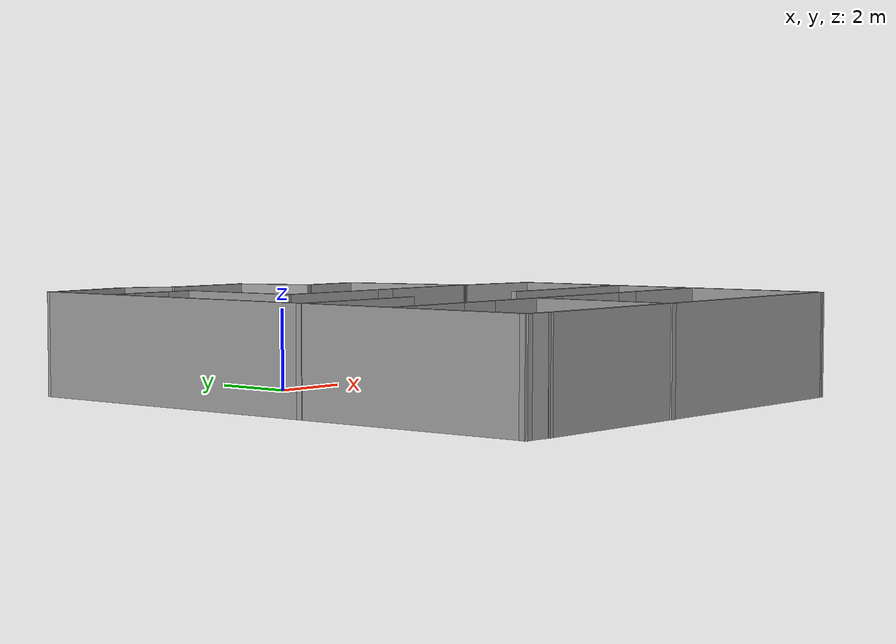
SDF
<?xml version='1.0'?>
<sdf version='1.6'>
  <model name='1world'>
    <pose frame=''>1.10591 -3.78067 0 0 -0 0</pose>
    <link name='Wall_22'>
      <pose frame=''>0.144752 1.70123 0 0 -0 0.004067</pose>
      <visual name='Wall_22_Visual_0'>
        <pose frame=''>-1.74012 0 1.25 0 -0 0</pose>
        <geometry>
          <box>
            <size>3.17376 0.15 2.5</size>
          </box>
        </geometry>
        <material>
          <script>
            <uri>file://media/materials/scripts/gazebo.material</uri>
            <name>Gazebo/Grey</name>
          </script>
          <ambient>1 1 1 1</ambient>
        </material>
        <meta>
          <layer>0</layer>
        </meta>
      </visual>
      <collision name='Wall_22_Collision_0'>
        <geometry>
          <box>
            <size>3.17376 0.15 2.5</size>
          </box>
        </geometry>
        <pose frame=''>-1.74012 0 1.25 0 -0 0</pose>
      </collision>
      <visual name='Wall_22_Visual_1'>
        <pose frame=''>1.85688 0 1.25 0 -0 0</pose>
        <geometry>
          <box>
            <size>2.94023 0.15 2.5</size>
          </box>
        </geometry>
        <material>
          <script>
            <uri>file://media/materials/scripts/gazebo.material</uri>
            <name>Gazebo/Grey</name>
          </script>
          <ambient>1 1 1 1</ambient>
        </material>
        <meta>
          <layer>0</layer>
        </meta>
      </visual>
      <collision name='Wall_22_Collision_1'>
        <geometry>
          <box>
            <size>2.94023 0.15 2.5</size>
          </box>
        </geometry>
        <pose frame=''>1.85688 0 1.25 0 -0 0</pose>
      </collision>
      <visual name='Wall_22_Visual_2'>
        <pose frame=''>0.116765 0 2.25 0 -0 0</pose>
        <geometry>
          <box>
            <size>0.54 0.15 0.5</size>
          </box>
        </geometry>
        <material>
          <script>
            <uri>file://media/materials/scripts/gazebo.material</uri>
            <name>Gazebo/Grey</name>
          </script>
          <ambient>1 1 1 1</ambient>
        </material>
        <meta>
          <layer>0</layer>
        </meta>
      </visual>
      <collision name='Wall_22_Collision_2'>
        <geometry>
          <box>
            <size>0.54 0.15 0.5</size>
          </box>
        </geometry>
        <pose frame=''>0.116765 0 2.25 0 -0 0</pose>
      </collision>
    </link>
    <link name='Wall_26'>
      <collision name='Wall_26_Collision'>
        <geometry>
          <box>
            <size>3.40414 0.15 2.5</size>
          </box>
        </geometry>
        <pose frame=''>0 0 1.25 0 -0 0</pose>
      </collision>
      <visual name='Wall_26_Visual'>
        <pose frame=''>0 0 1.25 0 -0 0</pose>
        <geometry>
          <box>
            <size>3.40414 0.15 2.5</size>
          </box>
        </geometry>
        <material>
          <script>
            <uri>file://media/materials/scripts/gazebo.material</uri>
            <name>Gazebo/Grey</name>
          </script>
          <ambient>1 1 1 1</ambient>
        </material>
        <meta>
          <layer>0</layer>
        </meta>
      </visual>
      <pose frame=''>2.98717 3.25396 0 0 -0 1.82525</pose>
    </link>
    <link name='Wall_30'>
      <collision name='Wall_30_Collision'>
        <geometry>
          <box>
            <size>11 0.15 2.5</size>
          </box>
        </geometry>
        <pose frame=''>0 0 1.25 0 -0 0</pose>
      </collision>
      <visual name='Wall_30_Visual'>
        <pose frame=''>0 0 1.25 0 -0 0</pose>
        <geometry>
          <box>
            <size>11 0.15 2.5</size>
          </box>
        </geometry>
        <material>
          <script>
            <uri>file://media/materials/scripts/gazebo.material</uri>
            <name>Gazebo/Grey</name>
          </script>
          <ambient>1 1 1 1</ambient>
        </material>
        <meta>
          <layer>0</layer>
        </meta>
      </visual>
      <pose frame=''>0.338502 -7.20601 0 0 -0 3.14159</pose>
    </link>
    <link name='Wall_31'>
      <collision name='Wall_31_Collision'>
        <geometry>
          <box>
            <size>0.82404 0.15 2.5</size>
          </box>
        </geometry>
        <pose frame=''>0 0 1.25 0 -0 0</pose>
      </collision>
      <visual name='Wall_31_Visual'>
        <pose frame=''>0 0 1.25 0 -0 0</pose>
        <geometry>
          <box>
            <size>0.82404 0.15 2.5</size>
          </box>
        </geometry>
        <material>
          <script>
            <uri>file://media/materials/scripts/gazebo.material</uri>
            <name>Gazebo/Grey</name>
          </script>
          <ambient>1 1 1 1</ambient>
        </material>
        <meta>
          <layer>0</layer>
        </meta>
      </visual>
      <pose frame=''>-5.42168 -7.17084 0 0 -0 3.03702</pose>
    </link>
    <link name='Wall_32'>
      <collision name='Wall_32_Collision'>
        <geometry>
          <box>
            <size>14.25 0.15 2.5</size>
          </box>
        </geometry>
        <pose frame=''>0 0 1.25 0 -0 0</pose>
      </collision>
      <visual name='Wall_32_Visual'>
        <pose frame=''>0 0 1.25 0 -0 0</pose>
        <geometry>
          <box>
            <size>14.25 0.15 2.5</size>
          </box>
        </geometry>
        <material>
          <script>
            <uri>file://media/materials/scripts/gazebo.material</uri>
            <name>Gazebo/Grey</name>
          </script>
          <ambient>1 1 1 1</ambient>
        </material>
        <meta>
          <layer>0</layer>
        </meta>
      </visual>
      <pose frame=''>-5.72168 -0.120835 0 0 -0 1.5708</pose>
    </link>
    <link name='Wall_35'>
      <pose frame=''>0.010281 -3.64927 0 0 -0 0</pose>
      <visual name='Wall_35_Visual_0'>
        <pose frame=''>-4.56273 0 1.25 0 -0 0</pose>
        <geometry>
          <box>
            <size>2.37454 0.15 2.5</size>
          </box>
        </geometry>
        <material>
          <script>
            <uri>file://media/materials/scripts/gazebo.material</uri>
            <name>Gazebo/Grey</name>
          </script>
          <ambient>1 1 1 1</ambient>
        </material>
        <meta>
          <layer>0</layer>
        </meta>
      </visual>
      <collision name='Wall_35_Collision_0'>
        <geometry>
          <box>
            <size>2.37454 0.15 2.5</size>
          </box>
        </geometry>
        <pose frame=''>-4.56273 0 1.25 0 -0 0</pose>
      </collision>
      <visual name='Wall_35_Visual_1'>
        <pose frame=''>0.074158 0 1.25 0 -0 0</pose>
        <geometry>
          <box>
            <size>4.73924 0.15 2.5</size>
          </box>
        </geometry>
        <material>
          <script>
            <uri>file://media/materials/scripts/gazebo.material</uri>
            <name>Gazebo/Grey</name>
          </script>
          <ambient>1 1 1 1</ambient>
        </material>
        <meta>
          <layer>0</layer>
        </meta>
      </visual>
      <collision name='Wall_35_Collision_1'>
        <geometry>
          <box>
            <size>4.73924 0.15 2.5</size>
          </box>
        </geometry>
        <pose frame=''>0.074158 0 1.25 0 -0 0</pose>
      </collision>
      <visual name='Wall_35_Visual_2'>
        <pose frame=''>4.45689 0 1.25 0 -0 0</pose>
        <geometry>
          <box>
            <size>2.58622 0.15 2.5</size>
          </box>
        </geometry>
        <material>
          <script>
            <uri>file://media/materials/scripts/gazebo.material</uri>
            <name>Gazebo/Grey</name>
          </script>
          <ambient>1 1 1 1</ambient>
        </material>
        <meta>
          <layer>0</layer>
        </meta>
      </visual>
      <collision name='Wall_35_Collision_2'>
        <geometry>
          <box>
            <size>2.58622 0.15 2.5</size>
          </box>
        </geometry>
        <pose frame=''>4.45689 0 1.25 0 -0 0</pose>
      </collision>
      <visual name='Wall_35_Visual_3'>
        <pose frame=''>-2.83546 0 2.25 0 -0 0</pose>
        <geometry>
          <box>
            <size>1.08 0.15 0.5</size>
          </box>
        </geometry>
        <material>
          <script>
            <uri>file://media/materials/scripts/gazebo.material</uri>
            <name>Gazebo/Grey</name>
          </script>
          <ambient>1 1 1 1</ambient>
        </material>
        <meta>
          <layer>0</layer>
        </meta>
      </visual>
      <collision name='Wall_35_Collision_3'>
        <geometry>
          <box>
            <size>1.08 0.15 0.5</size>
          </box>
        </geometry>
        <pose frame=''>-2.83546 0 2.25 0 -0 0</pose>
      </collision>
      <visual name='Wall_35_Visual_4'>
        <pose frame=''>2.80378 0 2.25 0 -0 0</pose>
        <geometry>
          <box>
            <size>0.72 0.15 0.5</size>
          </box>
        </geometry>
        <material>
          <script>
            <uri>file://media/materials/scripts/gazebo.material</uri>
            <name>Gazebo/Grey</name>
          </script>
          <ambient>1 1 1 1</ambient>
        </material>
        <meta>
          <layer>0</layer>
        </meta>
      </visual>
      <collision name='Wall_35_Collision_4'>
        <geometry>
          <box>
            <size>0.72 0.15 0.5</size>
          </box>
        </geometry>
        <pose frame=''>2.80378 0 2.25 0 -0 0</pose>
      </collision>
    </link>
    <link name='Wall_37'>
      <collision name='Wall_37_Collision'>
        <geometry>
          <box>
            <size>3.75 0.15 2.5</size>
          </box>
        </geometry>
        <pose frame=''>0 0 1.25 0 -0 0</pose>
      </collision>
      <visual name='Wall_37_Visual'>
        <pose frame=''>0 0 1.25 0 -0 0</pose>
        <geometry>
          <box>
            <size>3.75 0.15 2.5</size>
          </box>
        </geometry>
        <material>
          <script>
            <uri>file://media/materials/scripts/gazebo.material</uri>
            <name>Gazebo/Grey</name>
          </script>
          <ambient>1 1 1 1</ambient>
        </material>
        <meta>
          <layer>0</layer>
        </meta>
      </visual>
      <pose frame=''>-0.710659 -5.4488 0 0 -0 -1.5708</pose>
    </link>
    <link name='Wall_39'>
      <collision name='Wall_39_Collision'>
        <geometry>
          <box>
            <size>3.75 0.15 2.5</size>
          </box>
        </geometry>
        <pose frame=''>0 0 1.25 0 -0 0</pose>
      </collision>
      <visual name='Wall_39_Visual'>
        <pose frame=''>0 0 1.25 0 -0 0</pose>
        <geometry>
          <box>
            <size>3.75 0.15 2.5</size>
          </box>
        </geometry>
        <material>
          <script>
            <uri>file://media/materials/scripts/gazebo.material</uri>
            <name>Gazebo/Grey</name>
          </script>
          <ambient>1 1 1 1</ambient>
        </material>
        <meta>
          <layer>0</layer>
        </meta>
      </visual>
      <pose frame=''>-3.94122 -1.15111 0 0 -0 0</pose>
    </link>
    <link name='Wall_41'>
      <collision name='Wall_41_Collision'>
        <geometry>
          <box>
            <size>4.5 0.15 2.5</size>
          </box>
        </geometry>
        <pose frame=''>0 0 1.25 0 -0 0</pose>
      </collision>
      <visual name='Wall_41_Visual'>
        <pose frame=''>0 0 1.25 0 -0 0</pose>
        <geometry>
          <box>
            <size>4.5 0.15 2.5</size>
          </box>
        </geometry>
        <material>
          <script>
            <uri>file://media/materials/scripts/gazebo.material</uri>
            <name>Gazebo/Grey</name>
          </script>
          <ambient>1 1 1 1</ambient>
        </material>
        <meta>
          <layer>0</layer>
        </meta>
      </visual>
      <pose frame=''>3.58723 -1.46772 0 0 -0 3.14159</pose>
    </link>
    <link name='Wall_47'>
      <collision name='Wall_47_Collision'>
        <geometry>
          <box>
            <size>1.40684 0.15 2.5</size>
          </box>
        </geometry>
        <pose frame=''>0 0 1.25 0 -0 0</pose>
      </collision>
      <visual name='Wall_47_Visual'>
        <pose frame=''>0 0 1.25 0 -0 0</pose>
        <geometry>
          <box>
            <size>1.40684 0.15 2.5</size>
          </box>
        </geometry>
        <material>
          <script>
            <uri>file://media/materials/scripts/gazebo.material</uri>
            <name>Gazebo/Grey</name>
          </script>
          <ambient>1 1 1 1</ambient>
        </material>
        <meta>
          <layer>0</layer>
        </meta>
      </visual>
      <pose frame=''>-2.6279 6.90904 0 0 -0 -0.520274</pose>
    </link>
    <link name='Wall_48'>
      <collision name='Wall_48_Collision'>
        <geometry>
          <box>
            <size>2.5 0.15 2.5</size>
          </box>
        </geometry>
        <pose frame=''>0 0 1.25 0 -0 0</pose>
      </collision>
      <visual name='Wall_48_Visual'>
        <pose frame=''>0 0 1.25 0 -0 0</pose>
        <geometry>
          <box>
            <size>2.5 0.15 2.5</size>
          </box>
        </geometry>
        <material>
          <script>
            <uri>file://media/materials/scripts/gazebo.material</uri>
            <name>Gazebo/Grey</name>
          </script>
          <ambient>1 1 1 1</ambient>
        </material>
        <meta>
          <layer>0</layer>
        </meta>
      </visual>
      <pose frame=''>-0.907631 6.56146 0 0 -0 0</pose>
    </link>
    <link name='Wall_57'>
      <collision name='Wall_57_Collision'>
        <geometry>
          <box>
            <size>1.75 0.15 2.5</size>
          </box>
        </geometry>
        <pose frame=''>0 0 1.25 0 -0 0</pose>
      </collision>
      <visual name='Wall_57_Visual'>
        <pose frame=''>0 0 1.25 0 -0 0</pose>
        <geometry>
          <box>
            <size>1.75 0.15 2.5</size>
          </box>
        </geometry>
        <material>
          <script>
            <uri>file://media/materials/scripts/gazebo.material</uri>
            <name>Gazebo/Grey</name>
          </script>
          <ambient>1 1 1 1</ambient>
        </material>
        <meta>
          <layer>0</layer>
        </meta>
      </visual>
      <pose frame=''>1.77761 4.82864 0 0 -0 3.14159</pose>
    </link>
    <link name='Wall_59'>
      <pose frame=''>-4.40909 4.88141 0 0 -0 0.014325</pose>
      <visual name='Wall_59_Visual_0'>
        <pose frame=''>-0.959239 0 1.25 0 -0 0</pose>
        <geometry>
          <box>
            <size>0.687311 0.15 2.5</size>
          </box>
        </geometry>
        <material>
          <script>
            <uri>file://media/materials/scripts/gazebo.material</uri>
            <name>Gazebo/Grey</name>
          </script>
          <ambient>1 1 1 1</ambient>
        </material>
        <meta>
          <layer>0</layer>
        </meta>
      </visual>
      <collision name='Wall_59_Collision_0'>
        <geometry>
          <box>
            <size>0.687311 0.15 2.5</size>
          </box>
        </geometry>
        <pose frame=''>-0.959239 0 1.25 0 -0 0</pose>
      </collision>
      <visual name='Wall_59_Visual_1'>
        <pose frame=''>0.883655 0 1.25 0 -0 0</pose>
        <geometry>
          <box>
            <size>0.838478 0.15 2.5</size>
          </box>
        </geometry>
        <material>
          <script>
            <uri>file://media/materials/scripts/gazebo.material</uri>
            <name>Gazebo/Grey</name>
          </script>
          <ambient>1 1 1 1</ambient>
        </material>
        <meta>
          <layer>0</layer>
        </meta>
      </visual>
      <collision name='Wall_59_Collision_1'>
        <geometry>
          <box>
            <size>0.838478 0.15 2.5</size>
          </box>
        </geometry>
        <pose frame=''>0.883655 0 1.25 0 -0 0</pose>
      </collision>
      <visual name='Wall_59_Visual_2'>
        <pose frame=''>-0.075584 0 2.25 0 -0 0</pose>
        <geometry>
          <box>
            <size>1.08 0.15 0.5</size>
          </box>
        </geometry>
        <material>
          <script>
            <uri>file://media/materials/scripts/gazebo.material</uri>
            <name>Gazebo/Grey</name>
          </script>
          <ambient>1 1 1 1</ambient>
        </material>
        <meta>
          <layer>0</layer>
        </meta>
      </visual>
      <collision name='Wall_59_Collision_2'>
        <geometry>
          <box>
            <size>1.08 0.15 0.5</size>
          </box>
        </geometry>
        <pose frame=''>-0.075584 0 2.25 0 -0 0</pose>
      </collision>
    </link>
    <link name='Wall_61'>
      <collision name='Wall_61_Collision'>
        <geometry>
          <box>
            <size>2.44393 0.15 2.5</size>
          </box>
        </geometry>
        <pose frame=''>0 0 1.25 0 -0 0</pose>
      </collision>
      <visual name='Wall_61_Visual'>
        <pose frame=''>0 0 1.25 0 -0 0</pose>
        <geometry>
          <box>
            <size>2.44393 0.15 2.5</size>
          </box>
        </geometry>
        <material>
          <script>
            <uri>file://media/materials/scripts/gazebo.material</uri>
            <name>Gazebo/Grey</name>
          </script>
          <ambient>1 1 1 1</ambient>
        </material>
        <meta>
          <layer>0</layer>
        </meta>
      </visual>
      <pose frame=''>4.53555 1.54293 0 0 -0 -0.119161</pose>
    </link>
    <link name='Wall_63'>
      <collision name='Wall_63_Collision'>
        <geometry>
          <box>
            <size>8.76305 0.15 2.5</size>
          </box>
        </geometry>
        <pose frame=''>0 0 1.25 0 -0 0</pose>
      </collision>
      <visual name='Wall_63_Visual'>
        <pose frame=''>0 0 1.25 0 -0 0</pose>
        <geometry>
          <box>
            <size>8.76305 0.15 2.5</size>
          </box>
        </geometry>
        <material>
          <script>
            <uri>file://media/materials/scripts/gazebo.material</uri>
            <name>Gazebo/Grey</name>
          </script>
          <ambient>1 1 1 1</ambient>
        </material>
        <meta>
          <layer>0</layer>
        </meta>
      </visual>
      <pose frame=''>5.71894 -2.89972 0 0 -0 -1.56045</pose>
    </link>
    <link name='Wall_65'>
      <collision name='Wall_65_Collision'>
        <geometry>
          <box>
            <size>2.05532 0.15 2.5</size>
          </box>
        </geometry>
        <pose frame=''>0 0 1.25 0 -0 0</pose>
      </collision>
      <visual name='Wall_65_Visual'>
        <pose frame=''>0 0 1.25 0 -0 0</pose>
        <geometry>
          <box>
            <size>2.05532 0.15 2.5</size>
          </box>
        </geometry>
        <material>
          <script>
            <uri>file://media/materials/scripts/gazebo.material</uri>
            <name>Gazebo/Grey</name>
          </script>
          <ambient>1 1 1 1</ambient>
        </material>
        <meta>
          <layer>0</layer>
        </meta>
      </visual>
      <pose frame=''>0.62249 5.71264 0 0 -0 1.95278</pose>
    </link>
    <link name='Wall_67'>
      <collision name='Wall_67_Collision'>
        <geometry>
          <box>
            <size>3.36185 0.15 2.5</size>
          </box>
        </geometry>
        <pose frame=''>0 0 1.25 0 -0 0</pose>
      </collision>
      <visual name='Wall_67_Visual'>
        <pose frame=''>0 0 1.25 0 -0 0</pose>
        <geometry>
          <box>
            <size>3.36185 0.15 2.5</size>
          </box>
        </geometry>
        <material>
          <script>
            <uri>file://media/materials/scripts/gazebo.material</uri>
            <name>Gazebo/Grey</name>
          </script>
          <ambient>1 1 1 1</ambient>
        </material>
        <meta>
          <layer>0</layer>
        </meta>
      </visual>
      <pose frame=''>-3.14427 3.2935 0 0 -0 -1.54772</pose>
    </link>
    <link name='Wall_69'>
      <collision name='Wall_69_Collision'>
        <geometry>
          <box>
            <size>2.71521 0.15 2.5</size>
          </box>
        </geometry>
        <pose frame=''>0 0 1.25 0 -0 0</pose>
      </collision>
      <visual name='Wall_69_Visual'>
        <pose frame=''>0 0 1.25 0 -0 0</pose>
        <geometry>
          <box>
            <size>2.71521 0.15 2.5</size>
          </box>
        </geometry>
        <material>
          <script>
            <uri>file://media/materials/scripts/gazebo.material</uri>
            <name>Gazebo/Grey</name>
          </script>
          <ambient>1 1 1 1</ambient>
        </material>
        <meta>
          <layer>0</layer>
        </meta>
      </visual>
      <pose frame=''>-4.44742 7.0753 0 0 -0 -3.02741</pose>
    </link>
    <static>1</static>
  </model>
</sdf>
